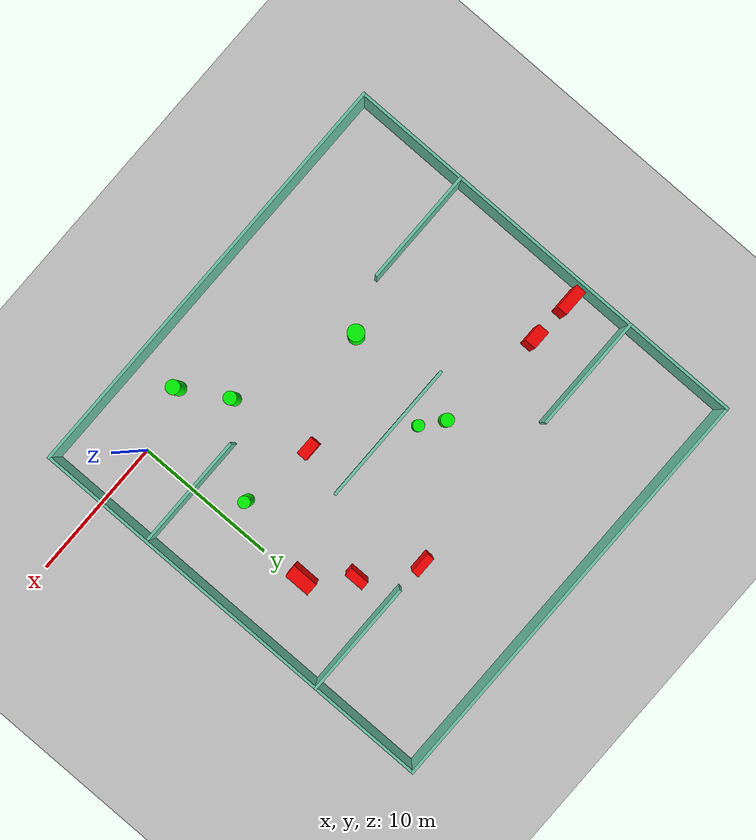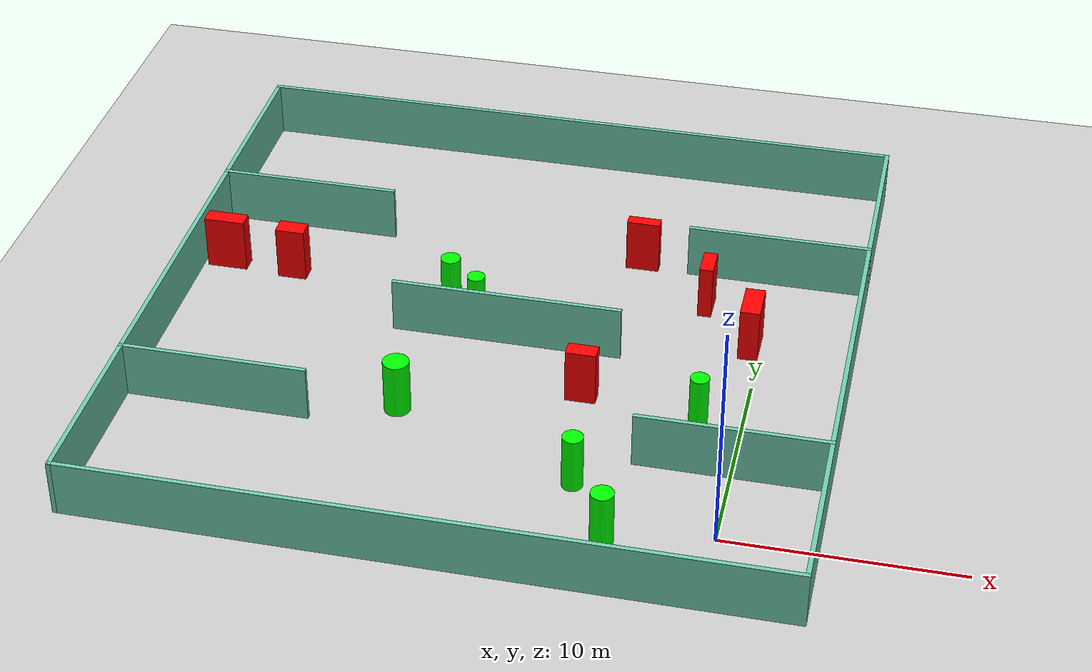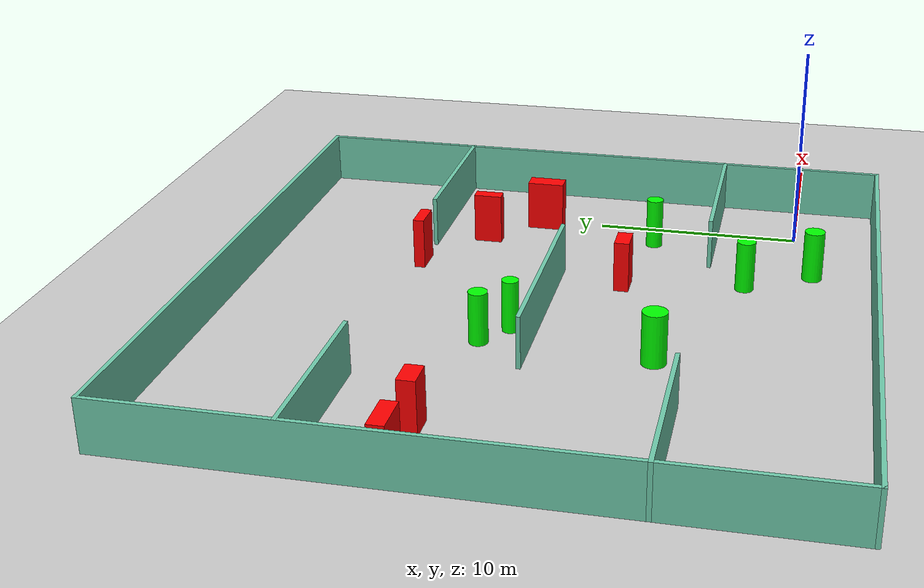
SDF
<sdf version="1.7">
 <world name="default">
  <light name="sun" type="directional">
   <pose>0 0 10 0 -0 0</pose>
   <diffuse>0.8 0.8 0.8 1</diffuse>
   <specular>0.2 0.2 0.2 1</specular>
   <attenuation>
    <range>1000</range>
    <constant>0.9</constant>
    <linear>0.01</linear>
    <quadratic>0.001</quadratic>
   </attenuation>
   <direction>-0.5 0.1 -0.9</direction>
   <spot><inner_angle>0</inner_angle><outer_angle>0</outer_angle><falloff>0</falloff></spot>
  </light>
  <model name="ground_plane">
   <static>1</static>
   <link name="link">
    <collision name="collision">
     <geometry><plane><normal>0 0 1</normal><size>100 100</size></plane></geometry>
     <surface>
      <contact><collide_bitmask>65535</collide_bitmask></contact>
      <friction><ode><mu>100</mu><mu2>50</mu2></ode></friction>
     </surface>
    </collision>
    <visual name="visual">
     <cast_shadows>0</cast_shadows>
     <geometry><plane><normal>0 0 1</normal><size>100 100</size></plane></geometry>
     <material>
      <script><uri>file://media/materials/scripts/gazebo.material</uri><name>Gazebo/Grey</name></script>
     </material>
    </visual>
   </link>
  </model>
  <gravity>0 0 -9.8</gravity>
  <magnetic_field>6e-06 2.3e-05 -4.2e-05</magnetic_field>
  <atmosphere type="adiabatic"/>
  <physics type="ode">
   <max_step_size>0.001</max_step_size>
   <real_time_factor>1</real_time_factor>
   <real_time_update_rate>1000</real_time_update_rate>
  </physics>
  <scene><ambient>0.4 0.4 0.4 1</ambient><background>0.7 0.7 0.7 1</background><shadows>1</shadows></scene>
  <spherical_coordinates>
   <surface_model>EARTH_WGS84</surface_model>
   <latitude_deg>0</latitude_deg>
   <longitude_deg>0</longitude_deg>
   <elevation>0</elevation>
   <heading_deg>0</heading_deg>
  </spherical_coordinates>
  <model name="my_base_walls">
   <link name="Wall_10">
    <collision name="Wall_10_Collision">
     <geometry><box><size>8.2 0.2 2.5</size></box></geometry>
     <pose>0 0 1.25 0 -0 0</pose>
    </collision>
    <visual name="Wall_10_Visual">
     <pose>0 0 1.25 0 -0 0</pose>
     <geometry><box><size>8.2 0.2 2.5</size></box></geometry>
     <material>
      <script><uri>file://media/materials/scripts/gazebo.material</uri><name>Gazebo/Grey</name></script>
      <ambient>0.435294 0.796078 0.67451 1</ambient>
     </material>
     <meta><layer>0</layer></meta>
    </visual>
    <pose>-11 -7 0 0 -0 0</pose>
   </link>
   <link name="Wall_12">
    <collision name="Wall_12_Collision">
     <geometry><box><size>8.2 0.2 2.5</size></box></geometry>
     <pose>0 0 1.25 0 -0 0</pose>
    </collision>
    <visual name="Wall_12_Visual">
     <pose>0 0 1.25 0 -0 0</pose>
     <geometry><box><size>8.2 0.2 2.5</size></box></geometry>
     <material>
      <script><uri>file://media/materials/scripts/gazebo.material</uri><name>Gazebo/Grey</name></script>
      <ambient>0.435294 0.796078 0.67451 1</ambient>
     </material>
     <meta><layer>0</layer></meta>
    </visual>
    <pose>-11 7 0 0 -0 0</pose>
   </link>
   <link name="Wall_14">
    <collision name="Wall_14_Collision">
     <geometry><box><size>8.2 0.2 2.5</size></box></geometry>
     <pose>0 0 1.25 0 -0 0</pose>
    </collision>
    <visual name="Wall_14_Visual">
     <pose>0 0 1.25 0 -0 0</pose>
     <geometry><box><size>8.2 0.2 2.5</size></box></geometry>
     <material>
      <script><uri>file://media/materials/scripts/gazebo.material</uri><name>Gazebo/Grey</name></script>
      <ambient>0.435294 0.796078 0.67451 1</ambient>
     </material>
     <meta><layer>0</layer></meta>
    </visual>
    <pose>11 7 0 0 -0 3.14159</pose>
   </link>
   <link name="Wall_16">
    <collision name="Wall_16_Collision">
     <geometry><box><size>10.2 0.2 2.5</size></box></geometry>
     <pose>0 0 1.25 0 -0 0</pose>
    </collision>
    <visual name="Wall_16_Visual">
     <pose>0 0 1.25 0 -0 0</pose>
     <geometry><box><size>10.2 0.2 2.5</size></box></geometry>
     <material>
      <script><uri>file://media/materials/scripts/gazebo.material</uri><name>Gazebo/Grey</name></script>
      <ambient>0.435294 0.796078 0.67451 1</ambient>
     </material>
     <meta><layer>0</layer></meta>
    </visual>
    <pose>0 0 0 0 -0 3.14159</pose>
   </link>
   <link name="Wall_2">
    <collision name="Wall_2_Collision">
     <geometry><box><size>30.2 0.2 2.5</size></box></geometry>
     <pose>0 0 1.25 0 -0 0</pose>
    </collision>
    <visual name="Wall_2_Visual">
     <pose>0 0 1.25 0 -0 0</pose>
     <geometry><box><size>30.2 0.2 2.5</size></box></geometry>
     <material>
      <script><uri>file://media/materials/scripts/gazebo.material</uri><name>Gazebo/Grey</name></script>
      <ambient>0.435294 0.796078 0.67451 1</ambient>
     </material>
     <meta><layer>0</layer></meta>
    </visual>
    <pose>0 -15 0 0 -0 3.14159</pose>
   </link>
   <link name="Wall_3">
    <collision name="Wall_3_Collision">
     <geometry><box><size>30.2 0.2 2.5</size></box></geometry>
     <pose>0 0 1.25 0 -0 0</pose>
    </collision>
    <visual name="Wall_3_Visual">
     <pose>0 0 1.25 0 -0 0</pose>
     <geometry><box><size>30.2 0.2 2.5</size></box></geometry>
     <material>
      <script><uri>file://media/materials/scripts/gazebo.material</uri><name>Gazebo/Grey</name></script>
      <ambient>0.435294 0.796078 0.67451 1</ambient>
     </material>
     <meta><layer>0</layer></meta>
    </visual>
    <pose>-15 0 0 0 -0 1.5708</pose>
   </link>
   <link name="Wall_4">
    <collision name="Wall_4_Collision">
     <geometry><box><size>30.2 0.2 2.5</size></box></geometry>
     <pose>0 0 1.25 0 -0 0</pose>
    </collision>
    <visual name="Wall_4_Visual">
     <pose>0 0 1.25 0 -0 0</pose>
     <geometry><box><size>30.2 0.2 2.5</size></box></geometry>
     <material>
      <script><uri>file://media/materials/scripts/gazebo.material</uri><name>Gazebo/Grey</name></script>
      <ambient>0.435294 0.796078 0.67451 1</ambient>
     </material>
     <meta><layer>0</layer></meta>
    </visual>
    <pose>0 15 0 0 -0 0</pose>
   </link>
   <link name="Wall_6">
    <collision name="Wall_6_Collision">
     <geometry><box><size>30.2 0.2 2.5</size></box></geometry>
     <pose>0 0 1.25 0 -0 0</pose>
    </collision>
    <visual name="Wall_6_Visual">
     <pose>0 0 1.25 0 -0 0</pose>
     <geometry><box><size>30.2 0.2 2.5</size></box></geometry>
     <material>
      <script><uri>file://media/materials/scripts/gazebo.material</uri><name>Gazebo/Grey</name></script>
      <ambient>0.435294 0.796078 0.67451 1</ambient>
     </material>
     <meta><layer>0</layer></meta>
    </visual>
    <pose>15 0 0 0 -0 1.5708</pose>
   </link>
   <link name="Wall_8">
    <collision name="Wall_8_Collision">
     <geometry><box><size>8.2 0.2 2.5</size></box></geometry>
     <pose>0 0 1.25 0 -0 0</pose>
    </collision>
    <visual name="Wall_8_Visual">
     <pose>0 0 1.25 0 -0 0</pose>
     <geometry><box><size>8.2 0.2 2.5</size></box></geometry>
     <material>
      <script><uri>file://media/materials/scripts/gazebo.material</uri><name>Gazebo/Grey</name></script>
      <ambient>0.435294 0.796078 0.67451 1</ambient>
     </material>
     <meta><layer>0</layer></meta>
    </visual>
    <pose>11 -7 0 0 -0 3.14159</pose>
   </link>
   <static>1</static>
   <pose>-11 11 0 0 -0 0</pose>
  </model>
  <model name="cylinder1">
   <static>1</static>
   <link name="link">
    <inertial>
     <mass>1</mass>
     <inertia><ixx>0.5</ixx><ixy>0</ixy><ixz>0</ixz><iyy>0.5</iyy><iyz>0</iyz><izz>1</izz></inertia>
    </inertial>
    <collision name="collision">
     <geometry><cylinder><radius>0.4440153889708521</radius><length>2.5</length></cylinder></geometry>
    </collision>
    <visual name="visual">
     <geometry><cylinder><radius>0.4440153889708521</radius><length>2.5</length></cylinder></geometry>
     <material>
      <ambient>0 1 0 1</ambient>
      <diffuse>0 1 0 1</diffuse>
      <specular>0.1 0.1 0.1 1</specular>
      <emissive>0 0 0 0</emissive>
     </material>
    </visual>
   </link>
   <pose>-14.034342170274574 13.266712115745538 1.25 0 0 0</pose>
  </model>
  <model name="cylinder2">
   <static>1</static>
   <link name="link">
    <inertial>
     <mass>1</mass>
     <inertia><ixx>0.5</ixx><ixy>0</ixy><ixz>0</ixz><iyy>0.5</iyy><iyz>0</iyz><izz>1</izz></inertia>
    </inertial>
    <collision name="collision">
     <geometry><cylinder><radius>0.44818226197040756</radius><length>2.5</length></cylinder></geometry>
    </collision>
    <visual name="visual">
     <geometry><cylinder><radius>0.44818226197040756</radius><length>2.5</length></cylinder></geometry>
     <material>
      <ambient>0 1 0 1</ambient>
      <diffuse>0 1 0 1</diffuse>
      <specular>0.1 0.1 0.1 1</specular>
      <emissive>0 0 0 0</emissive>
     </material>
    </visual>
   </link>
   <pose>-6.191708067260009 2.101321311252672 1.25 0 0 0</pose>
  </model>
  <model name="cylinder3">
   <static>1</static>
   <link name="link">
    <inertial>
     <mass>1</mass>
     <inertia><ixx>0.5</ixx><ixy>0</ixy><ixz>0</ixz><iyy>0.5</iyy><iyz>0</iyz><izz>1</izz></inertia>
    </inertial>
    <collision name="collision">
     <geometry><cylinder><radius>0.4098742442887423</radius><length>2.5</length></cylinder></geometry>
    </collision>
    <visual name="visual">
     <geometry><cylinder><radius>0.4098742442887423</radius><length>2.5</length></cylinder></geometry>
     <material>
      <ambient>0 1 0 1</ambient>
      <diffuse>0 1 0 1</diffuse>
      <specular>0.1 0.1 0.1 1</specular>
      <emissive>0 0 0 0</emissive>
     </material>
    </visual>
   </link>
   <pose>-1.8504172968452757 7.025746430997435 1.25 0 0 0</pose>
  </model>
  <model name="cylinder4">
   <static>1</static>
   <link name="link">
    <inertial>
     <mass>1</mass>
     <inertia><ixx>0.5</ixx><ixy>0</ixy><ixz>0</ixz><iyy>0.5</iyy><iyz>0</iyz><izz>1</izz></inertia>
    </inertial>
    <collision name="collision">
     <geometry><cylinder><radius>0.48674206879512505</radius><length>2.5</length></cylinder></geometry>
    </collision>
    <visual name="visual">
     <geometry><cylinder><radius>0.48674206879512505</radius><length>2.5</length></cylinder></geometry>
     <material>
      <ambient>0 1 0 1</ambient>
      <diffuse>0 1 0 1</diffuse>
      <specular>0.1 0.1 0.1 1</specular>
      <emissive>0 0 0 0</emissive>
     </material>
    </visual>
   </link>
   <pose>-4.3695519209195 -1.0413233970286147 1.25 0 0 0</pose>
  </model>
  <model name="cylinder5">
   <static>1</static>
   <link name="link">
    <inertial>
     <mass>1</mass>
     <inertia><ixx>0.5</ixx><ixy>0</ixy><ixz>0</ixz><iyy>0.5</iyy><iyz>0</iyz><izz>1</izz></inertia>
    </inertial>
    <collision name="collision">
     <geometry><cylinder><radius>0.39175072188300225</radius><length>2.5</length></cylinder></geometry>
    </collision>
    <visual name="visual">
     <geometry><cylinder><radius>0.39175072188300225</radius><length>2.5</length></cylinder></geometry>
     <material>
      <ambient>0 1 0 1</ambient>
      <diffuse>0 1 0 1</diffuse>
      <specular>0.1 0.1 0.1 1</specular>
      <emissive>0 0 0 0</emissive>
     </material>
    </visual>
   </link>
   <pose>-12.59819444913419 12.135654525734743 1.25 0 0 0</pose>
  </model>
  <model name="cylinder6">
   <static>1</static>
   <link name="link">
    <inertial>
     <mass>1</mass>
     <inertia><ixx>0.5</ixx><ixy>0</ixy><ixz>0</ixz><iyy>0.5</iyy><iyz>0</iyz><izz>1</izz></inertia>
    </inertial>
    <collision name="collision">
     <geometry><cylinder><radius>0.572435608965481</radius><length>2.5</length></cylinder></geometry>
    </collision>
    <visual name="visual">
     <geometry><cylinder><radius>0.572435608965481</radius><length>2.5</length></cylinder></geometry>
     <material>
      <ambient>0 1 0 1</ambient>
      <diffuse>0 1 0 1</diffuse>
      <specular>0.1 0.1 0.1 1</specular>
      <emissive>0 0 0 0</emissive>
     </material>
    </visual>
   </link>
   <pose>-14.405639086823694 5.379301837462119 1.25 0 0 0</pose>
  </model>
  <model name="box1">
   <static>1</static>
   <link name="link">
    <inertial>
     <mass>1</mass>
     <inertia><ixx>0.083</ixx><ixy>0</ixy><ixz>0</ixz><iyy>0.083</iyy><iyz>0</iyz><izz>0.083</izz></inertia>
    </inertial>
    <collision name="collision">
     <geometry><box><size>0.6125751268495815 1.3853441075043966 2.5</size></box></geometry>
    </collision>
    <visual name="visual">
     <geometry><box><size>0.6125751268495815 1.3853441075043966 2.5</size></box></geometry>
     <material>
      <ambient>1 0 0 1</ambient>
      <diffuse>1 0 0 1</diffuse>
      <specular>0.1 0.1 0.1 1</specular>
      <emissive>0 0 0 0</emissive>
     </material>
    </visual>
    <sensor name="my_contact" type="contact">
     <contact><collision>box_collision</collision><topic>__default_topic__</topic></contact>
    </sensor>
   </link>
   <pose>-2.8282159791656376 15.4714709909595 1.25 0 0 0</pose>
  </model>
  <model name="box2">
   <static>1</static>
   <link name="link">
    <inertial>
     <mass>1</mass>
     <inertia><ixx>0.083</ixx><ixy>0</ixy><ixz>0</ixz><iyy>0.083</iyy><iyz>0</iyz><izz>0.083</izz></inertia>
    </inertial>
    <collision name="collision">
     <geometry><box><size>0.8700655424077213 1.8194069582093686 2.5</size></box></geometry>
    </collision>
    <visual name="visual">
     <geometry><box><size>0.8700655424077213 1.8194069582093686 2.5</size></box></geometry>
     <material>
      <ambient>1 0 0 1</ambient>
      <diffuse>1 0 0 1</diffuse>
      <specular>0.1 0.1 0.1 1</specular>
      <emissive>0 0 0 0</emissive>
     </material>
    </visual>
    <sensor name="my_contact" type="contact">
     <contact><collision>box_collision</collision><topic>__default_topic__</topic></contact>
    </sensor>
   </link>
   <pose>-0.4866404168931382 12.904148511957581 1.25 0 0 0</pose>
  </model>
  <model name="box3">
   <static>1</static>
   <link name="link">
    <inertial>
     <mass>1</mass>
     <inertia><ixx>0.083</ixx><ixy>0</ixy><ixz>0</ixz><iyy>0.083</iyy><iyz>0</iyz><izz>0.083</izz></inertia>
    </inertial>
    <collision name="collision">
     <geometry><box><size>1.8358704189453814 0.743314766841591 2.5</size></box></geometry>
    </collision>
    <visual name="visual">
     <geometry><box><size>1.8358704189453814 0.743314766841591 2.5</size></box></geometry>
     <material>
      <ambient>1 0 0 1</ambient>
      <diffuse>1 0 0 1</diffuse>
      <specular>0.1 0.1 0.1 1</specular>
      <emissive>0 0 0 0</emissive>
     </material>
    </visual>
    <sensor name="my_contact" type="contact">
     <contact><collision>box_collision</collision><topic>__default_topic__</topic></contact>
    </sensor>
   </link>
   <pose>-24.777732081265 14.223057458994923 1.25 0 0 0</pose>
  </model>
  <model name="box4">
   <static>1</static>
   <link name="link">
    <inertial>
     <mass>1</mass>
     <inertia><ixx>0.083</ixx><ixy>0</ixy><ixz>0</ixz><iyy>0.083</iyy><iyz>0</iyz><izz>0.083</izz></inertia>
    </inertial>
    <collision name="collision">
     <geometry><box><size>1.3112107014900922 0.8174730994217351 2.5</size></box></geometry>
    </collision>
    <visual name="visual">
     <geometry><box><size>1.3112107014900922 0.8174730994217351 2.5</size></box></geometry>
     <material>
      <ambient>1 0 0 1</ambient>
      <diffuse>1 0 0 1</diffuse>
      <specular>0.1 0.1 0.1 1</specular>
      <emissive>0 0 0 0</emissive>
     </material>
    </visual>
    <sensor name="my_contact" type="contact">
     <contact><collision>box_collision</collision><topic>__default_topic__</topic></contact>
    </sensor>
   </link>
   <pose>-21.6355676385709 14.080832400837323 1.25 0 0 0</pose>
  </model>
  <model name="box5">
   <static>1</static>
   <link name="link">
    <inertial>
     <mass>1</mass>
     <inertia><ixx>0.083</ixx><ixy>0</ixy><ixz>0</ixz><iyy>0.083</iyy><iyz>0</iyz><izz>0.083</izz></inertia>
    </inertial>
    <collision name="collision">
     <geometry><box><size>1.49356438741662 0.5311743836819199 2.5</size></box></geometry>
    </collision>
    <visual name="visual">
     <geometry><box><size>1.49356438741662 0.5311743836819199 2.5</size></box></geometry>
     <material>
      <ambient>1 0 0 1</ambient>
      <diffuse>1 0 0 1</diffuse>
      <specular>0.1 0.1 0.1 1</specular>
      <emissive>0 0 0 0</emissive>
     </material>
    </visual>
    <sensor name="my_contact" type="contact">
     <contact><collision>box_collision</collision><topic>__default_topic__</topic></contact>
    </sensor>
   </link>
   <pose>-6.17949444322652 18.048158452284866 1.25 0 0 0</pose>
  </model>
  <model name="box6">
   <static>1</static>
   <link name="link">
    <inertial>
     <mass>1</mass>
     <inertia><ixx>0.083</ixx><ixy>0</ixy><ixz>0</ixz><iyy>0.083</iyy><iyz>0</iyz><izz>0.083</izz></inertia>
    </inertial>
    <collision name="collision">
     <geometry><box><size>1.322244273634873 0.7214272833444577 2.5</size></box></geometry>
    </collision>
    <visual name="visual">
     <geometry><box><size>1.322244273634873 0.7214272833444577 2.5</size></box></geometry>
     <material>
      <ambient>1 0 0 1</ambient>
      <diffuse>1 0 0 1</diffuse>
      <specular>0.1 0.1 0.1 1</specular>
      <emissive>0 0 0 0</emissive>
     </material>
    </visual>
    <sensor name="my_contact" type="contact">
     <contact><collision>box_collision</collision><topic>__default_topic__</topic></contact>
    </sensor>
   </link>
   <pose>-6.987040423266336 7.865123774980578 1.25 0 0 0</pose>
  </model>
 </world>
</sdf>
